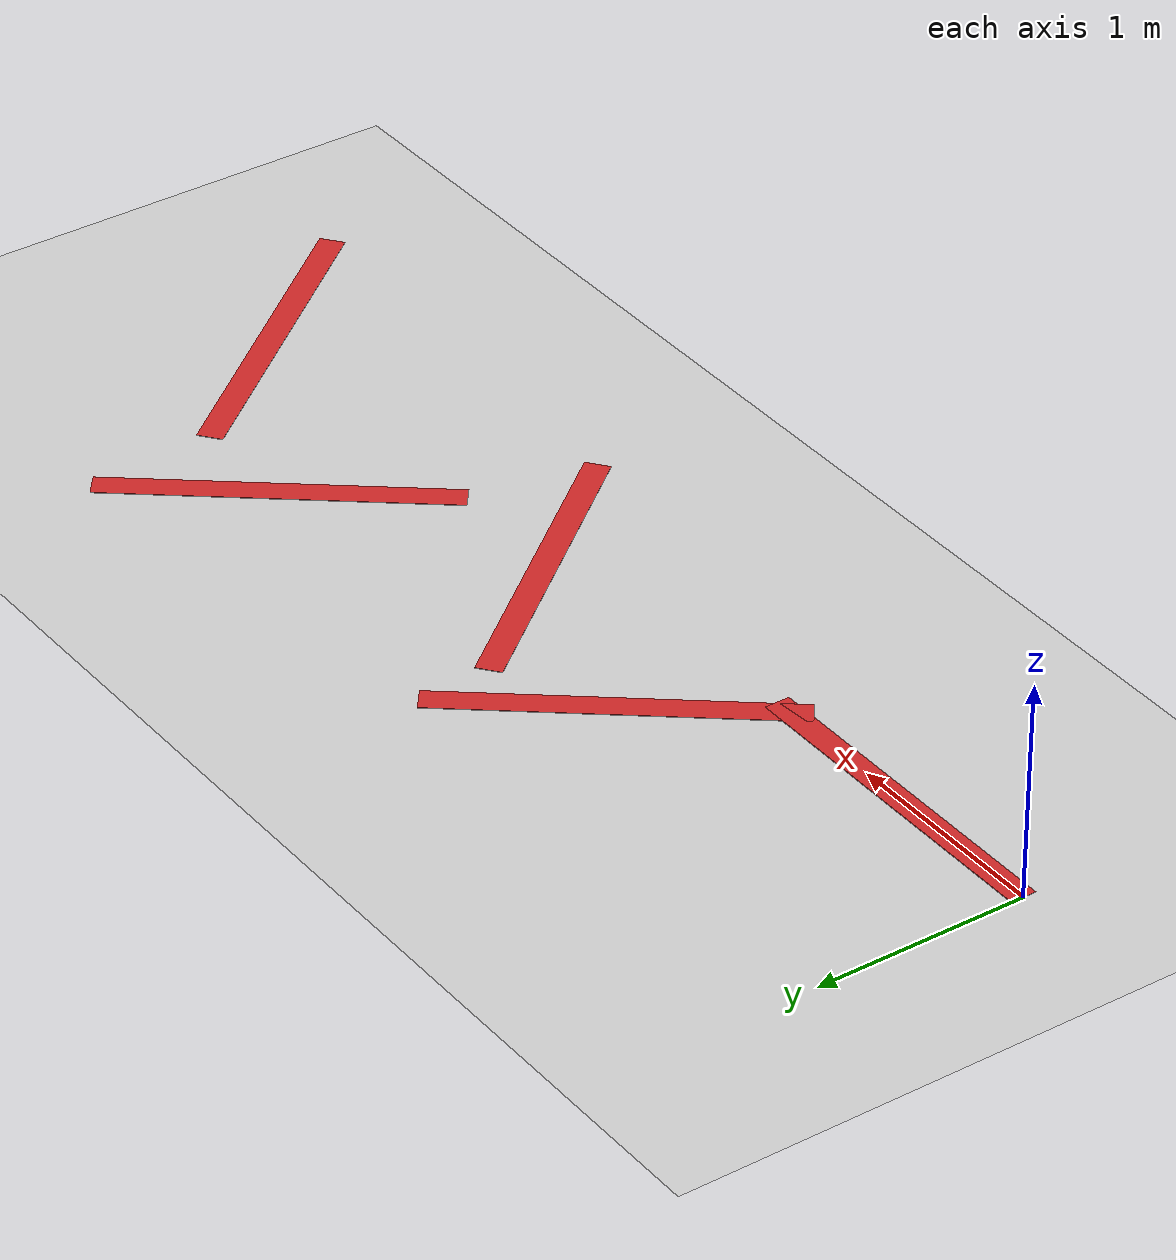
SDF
<sdf version='1.6'>
  <world name='red_zigzag'>
    <include>
      <uri>model://ground_plane</uri>
    </include>
    <include>
      <uri>model://sun</uri>
    </include>

    <scene>
      <ambient>0.45 0.45 0.45 1</ambient>
      <background>0.88 0.88 0.88 1</background>
      <shadows>1</shadows>
    </scene>

    <physics name='default_physics' default='1' type='ode'>
      <max_step_size>0.001</max_step_size>
      <real_time_factor>1</real_time_factor>
      <real_time_update_rate>1000</real_time_update_rate>
    </physics>

    <gui fullscreen='0'>
      <camera name='user_camera'>
        <pose frame=''>1.7 0.5 9.5 0 1.45 0</pose>
        <view_controller>orbit</view_controller>
        <projection_type>perspective</projection_type>
      </camera>
    </gui>

    <model name='red_line_0'>
      <static>1</static>
      <pose>0.8 0.0 0.001 0 0 0</pose>
      <link name='link'>
        <collision name='collision'>
          <geometry>
            <box>
              <size>1.6 0.12 0.002</size>
            </box>
          </geometry>
        </collision>
        <visual name='visual'>
          <geometry>
            <box>
              <size>1.6 0.12 0.002</size>
            </box>
          </geometry>
          <material>
            <script>
              <uri>file://media/materials/scripts/gazebo.material</uri>
              <name>Gazebo/Red</name>
            </script>
          </material>
        </visual>
      </link>
    </model>

    <model name='red_line_1'>
      <static>1</static>
      <pose>1.95 0.55 0.001 0 0 0.9</pose>
      <link name='link'>
        <collision name='collision'>
          <geometry>
            <box>
              <size>1.6 0.12 0.002</size>
            </box>
          </geometry>
        </collision>
        <visual name='visual'>
          <geometry>
            <box>
              <size>1.6 0.12 0.002</size>
            </box>
          </geometry>
          <material>
            <script>
              <uri>file://media/materials/scripts/gazebo.material</uri>
              <name>Gazebo/Red</name>
            </script>
          </material>
        </visual>
      </link>
    </model>

    <model name='red_line_2'>
      <static>1</static>
      <pose>2.95 0.2 0.001 0 0 -0.9</pose>
      <link name='link'>
        <collision name='collision'>
          <geometry>
            <box>
              <size>1.6 0.12 0.002</size>
            </box>
          </geometry>
        </collision>
        <visual name='visual'>
          <geometry>
            <box>
              <size>1.6 0.12 0.002</size>
            </box>
          </geometry>
          <material>
            <script>
              <uri>file://media/materials/scripts/gazebo.material</uri>
              <name>Gazebo/Red</name>
            </script>
          </material>
        </visual>
      </link>
    </model>

    <model name='red_line_3'>
      <static>1</static>
      <pose>4.05 0.8 0.001 0 0 0.9</pose>
      <link name='link'>
        <collision name='collision'>
          <geometry>
            <box>
              <size>1.6 0.12 0.002</size>
            </box>
          </geometry>
        </collision>
        <visual name='visual'>
          <geometry>
            <box>
              <size>1.6 0.12 0.002</size>
            </box>
          </geometry>
          <material>
            <script>
              <uri>file://media/materials/scripts/gazebo.material</uri>
              <name>Gazebo/Red</name>
            </script>
          </material>
        </visual>
      </link>
    </model>

    <model name='red_line_4'>
      <static>1</static>
      <pose>5.1 0.15 0.001 0 0 -0.9</pose>
      <link name='link'>
        <collision name='collision'>
          <geometry>
            <box>
              <size>1.7 0.12 0.002</size>
            </box>
          </geometry>
        </collision>
        <visual name='visual'>
          <geometry>
            <box>
              <size>1.7 0.12 0.002</size>
            </box>
          </geometry>
          <material>
            <script>
              <uri>file://media/materials/scripts/gazebo.material</uri>
              <name>Gazebo/Red</name>
            </script>
          </material>
        </visual>
      </link>
    </model>
  </world>
</sdf>
